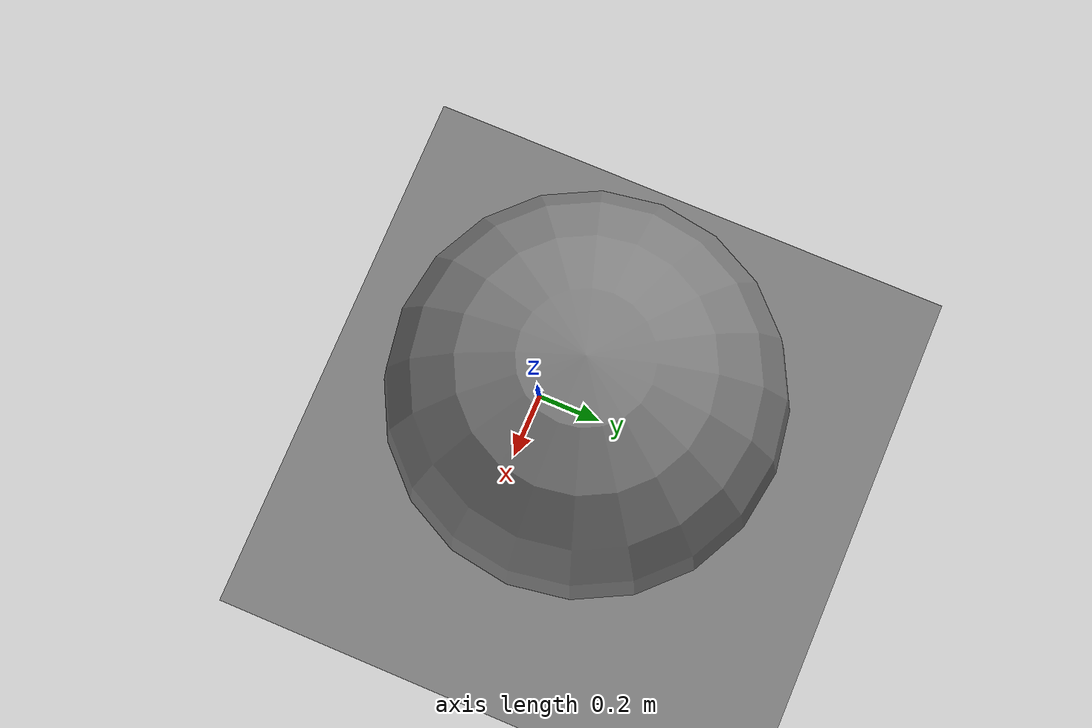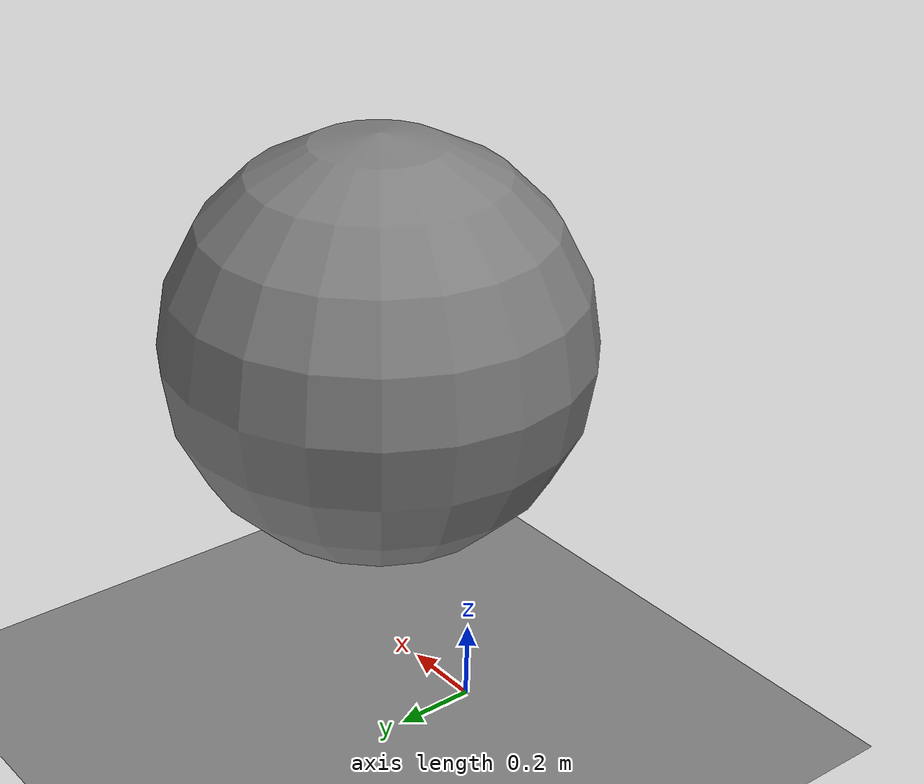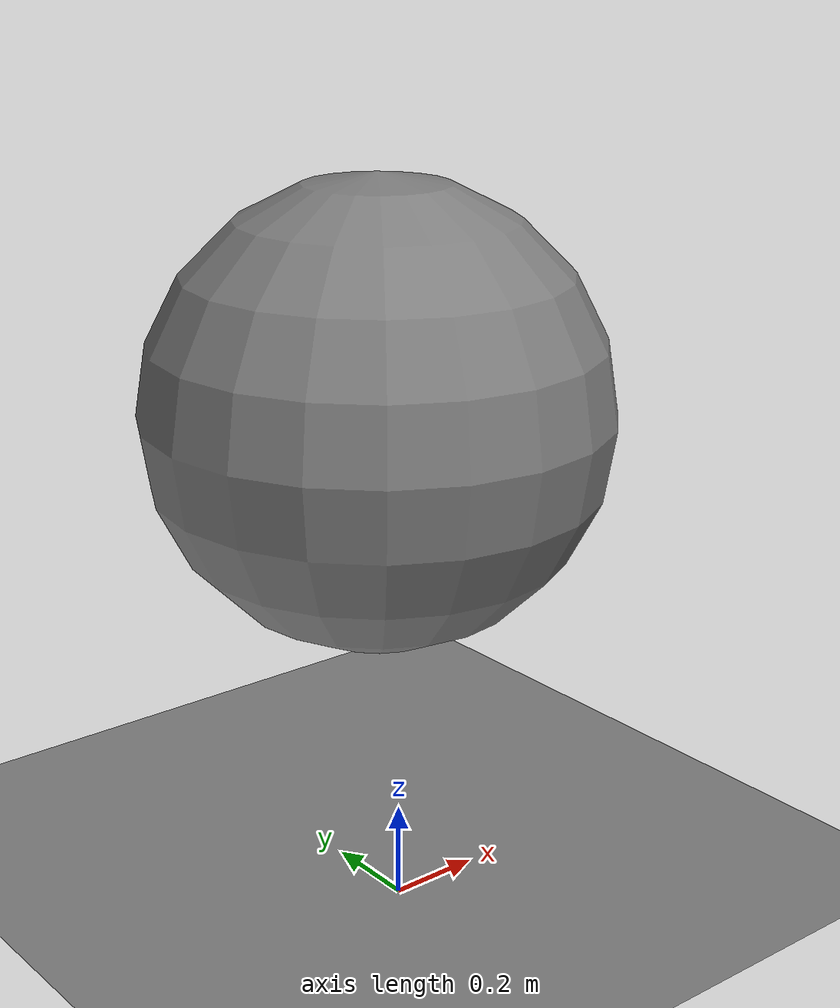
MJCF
<mujoco model="determinism">
            <option gravity="0 0 -9.81" timestep="0.001"/>
            <worldbody>
                <geom name="floor" type="plane" size="5 5 0.1"/>
                <body name="ball" pos="0.1 0.2 1.0">
                    <joint type="free"/>
                    <geom type="sphere" size="0.5" mass="1"/>
                </body>
            </worldbody>
        </mujoco>
